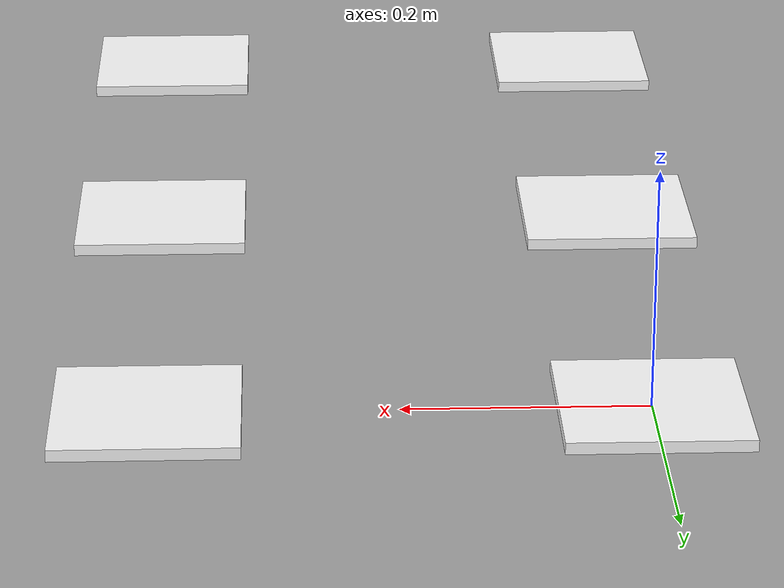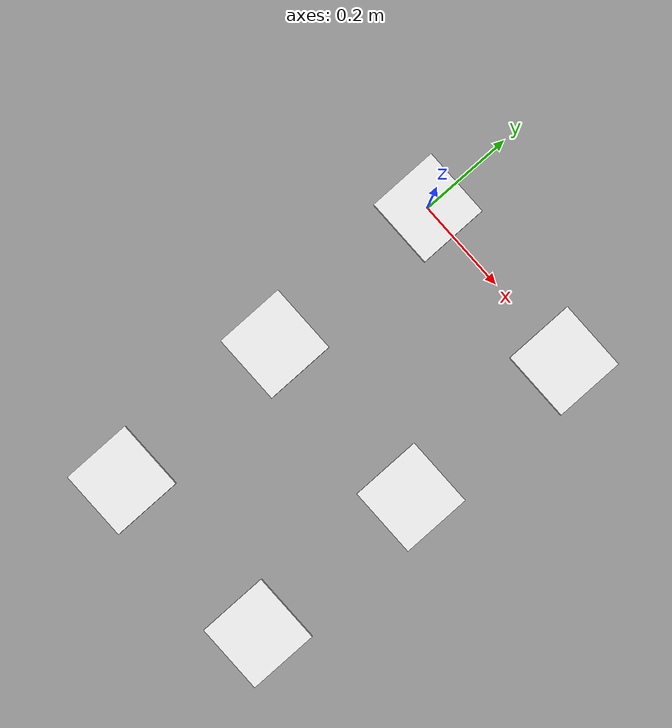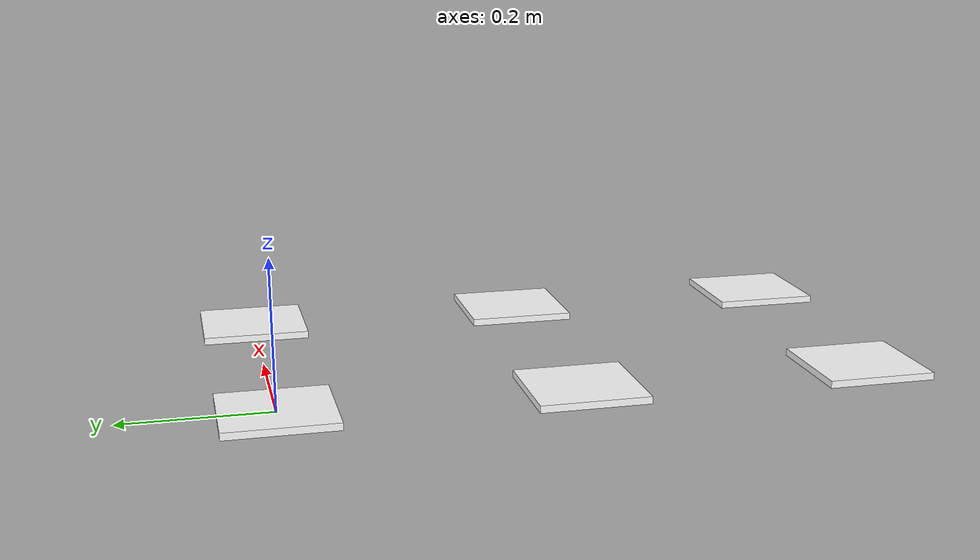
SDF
<?xml version='1.0'?>

<sdf version='1.7'>
  <model name='goods_pads'>
    <static>true</static>

    <link name="goods#00">
      <pose>0 0 0.001 0 0 0</pose>
      <visual name='visual'>
        <geometry>
          <box><size>0.15 0.15 0.01</size></box>
        </geometry>
        <material>
          <ambient>1 1 1 1</ambient>
          <diffuse>1 1 1 1</diffuse>
          <specular>0 0 0 1</specular>
          <pbr>
            <metal>
              <metalness>0</metalness>
              <roughness>0.9</roughness>
              <albedo_map>
                materials/textures/tag36h11-100.png
              </albedo_map>
            </metal>
          </pbr>
        </material>
      </visual>
    </link>

    <link name="goods#01">
      <pose>0.4 0 0.001 0 0 0</pose>
      <visual name='visual'>
        <geometry>
          <box><size>0.15 0.15 0.01</size></box>
        </geometry>
        <material>
          <ambient>1 1 1 1</ambient>
          <diffuse>1 1 1 1</diffuse>
          <specular>0 0 0 1</specular>
          <pbr>
            <metal>
              <metalness>0</metalness>
              <roughness>0.9</roughness>
              <albedo_map>
                materials/textures/tag36h11-101.png
              </albedo_map>
            </metal>
          </pbr>
        </material>
      </visual>
    </link>

    <link name="goods#02">
      <pose>0 -0.4 0.001 0 0 0</pose>
      <visual name='visual'>
        <geometry>
          <box><size>0.15 0.15 0.01</size></box>
        </geometry>
        <material>
          <ambient>1 1 1 1</ambient>
          <diffuse>1 1 1 1</diffuse>
          <specular>0 0 0 1</specular>
          <pbr>
            <metal>
              <metalness>0</metalness>
              <roughness>0.9</roughness>
              <albedo_map>
                materials/textures/tag36h11-102.png
              </albedo_map>
            </metal>
          </pbr>
        </material>
      </visual>
    </link>

    <link name="goods#03">
      <pose>0.4 -0.4 0.001 0 0 0</pose>
      <visual name='visual'>
        <geometry>
          <box><size>0.15 0.15 0.01</size></box>
        </geometry>
        <material>
          <ambient>1 1 1 1</ambient>
          <diffuse>1 1 1 1</diffuse>
          <specular>0 0 0 1</specular>
          <pbr>
            <metal>
              <metalness>0</metalness>
              <roughness>0.9</roughness>
              <albedo_map>
                materials/textures/tag36h11-103.png
              </albedo_map>
            </metal>
          </pbr>
        </material>
      </visual>
    </link>

    <link name="goods#04">
      <pose>0 -0.8 0.001 0 0 0</pose>
      <visual name='visual'>
        <geometry>
          <box><size>0.15 0.15 0.01</size></box>
        </geometry>
        <material>
          <ambient>1 1 1 1</ambient>
          <diffuse>1 1 1 1</diffuse>
          <specular>0 0 0 1</specular>
          <pbr>
            <metal>
              <metalness>0</metalness>
              <roughness>0.9</roughness>
              <albedo_map>
                materials/textures/tag36h11-104.png
              </albedo_map>
            </metal>
          </pbr>
        </material>
      </visual>
    </link>

    <link name="goods#05">
      <pose>0.4 -0.8 0.001 0 0 0</pose>
      <visual name='visual'>
        <geometry>
          <box><size>0.15 0.15 0.01</size></box>
        </geometry>
        <material>
          <ambient>1 1 1 1</ambient>
          <diffuse>1 1 1 1</diffuse>
          <specular>0 0 0 1</specular>
          <pbr>
            <metal>
              <metalness>0</metalness>
              <roughness>0.9</roughness>
              <albedo_map>
                materials/textures/tag36h11-105.png
              </albedo_map>
            </metal>
          </pbr>
        </material>
      </visual>
    </link>

  </model>
</sdf>
